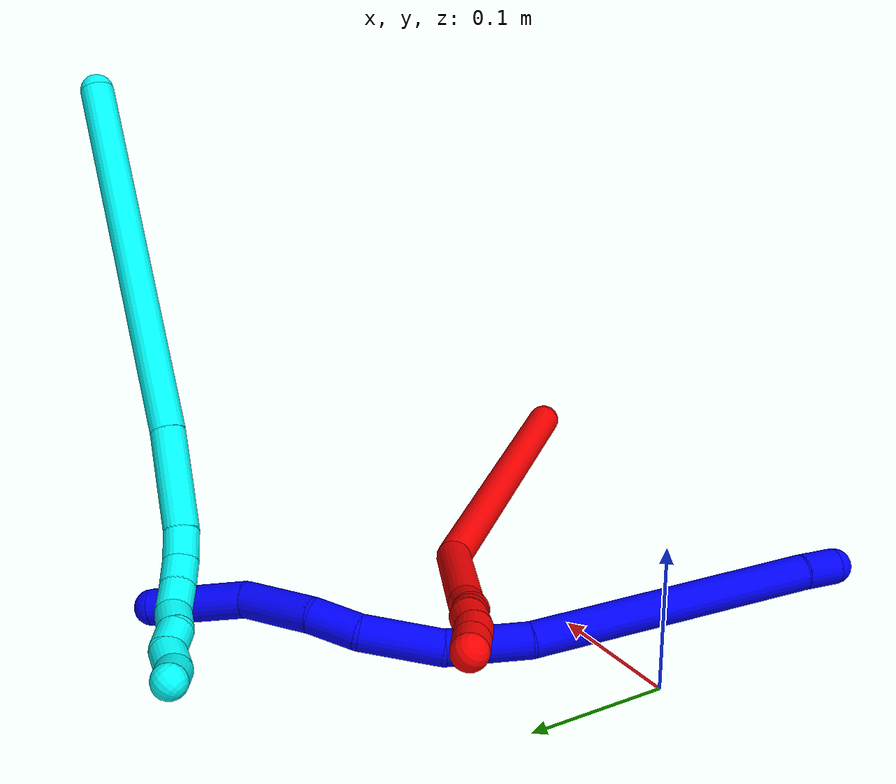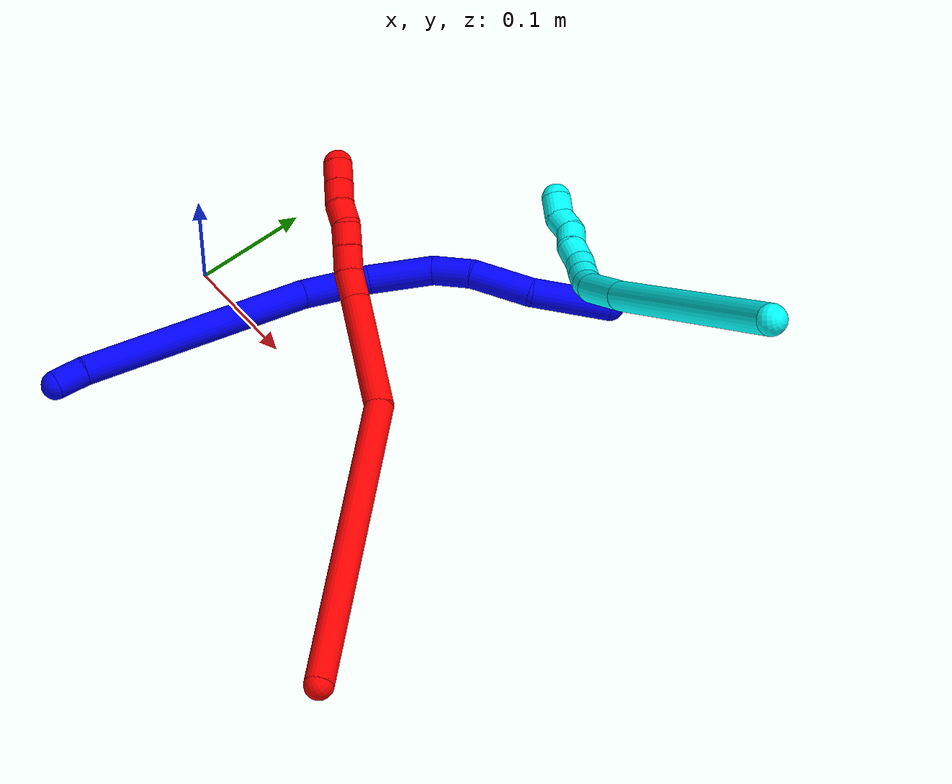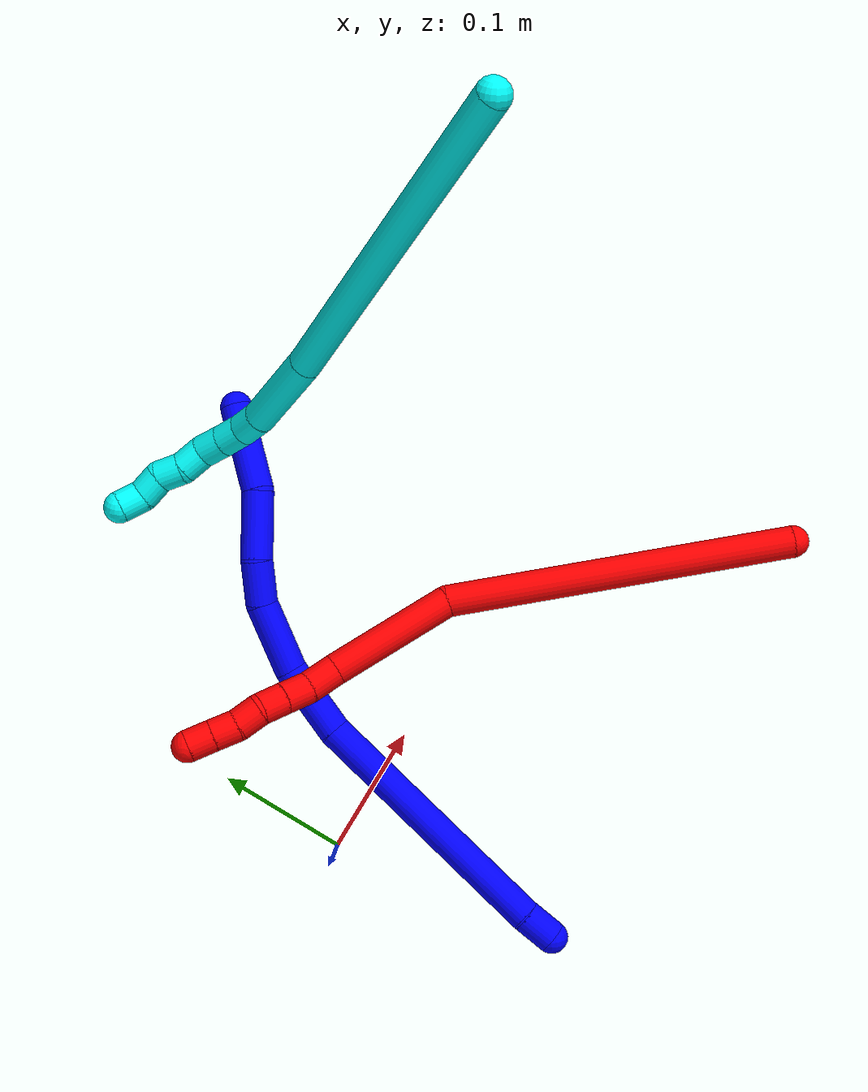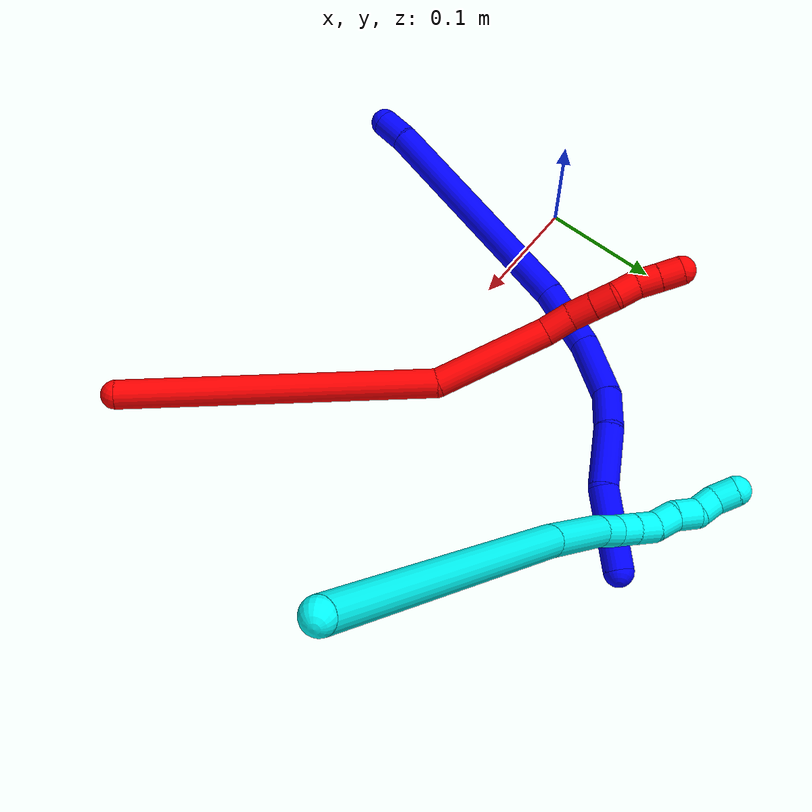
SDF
<sdf version="1.7">
 <world name="default">
  <plugin name="TubeGeneratorPlugin" filename="libtube_generator_plugin.so"/>
  <model name="photoneo_s_sensor">
   <static>1</static>
   <pose>0 0 2 1.57079 1.57079 3.14159</pose>
   <link name="link">
    <inertial><mass>0.1</mass></inertial>
    <sensor name="sensor" type="depth">
     <update_rate>30</update_rate>
     <camera>
      <horizontal_fov>1.22</horizontal_fov>
      <image><width>1920</width><height>1200</height><format>B8G8R8</format></image>
      <clip><near>0.1</near><far>4</far></clip>
      <depth_camera><output>points</output></depth_camera>
     </camera>
     <plugin name="camera_plugin" filename="libgazebo_ros_depth_camera.so">
      <baseline>0.2</baseline>
      <alwaysOn>1</alwaysOn>
      <updateRate>0.0</updateRate>
      <cameraName>camera_ir</cameraName>
      <imageTopicName>/camera/color/image_raw</imageTopicName>
      <cameraInfoTopicName>/camera/color/camera_info</cameraInfoTopicName>
      <depthImageTopicName>/camera/depth/image_raw</depthImageTopicName>
      <depthImageCameraInfoTopicName>/camera/depth/camera_info</depthImageCameraInfoTopicName>
      <pointCloudTopicName>/camera/depth/points</pointCloudTopicName>
      <frameName>fr_optical</frameName>
      <pointCloudCutoff>0.1</pointCloudCutoff>
      <pointCloudCutoffMax>2.0</pointCloudCutoffMax>
      <distortionK1>0</distortionK1>
      <distortionK2>0</distortionK2>
      <distortionK3>0</distortionK3>
      <distortionT1>0</distortionT1>
      <distortionT2>0</distortionT2>
      <CxPrime>0</CxPrime>
      <Cx>0</Cx>
      <Cy>0</Cy>
      <focalLength>0</focalLength>
      <hackBaseline>0</hackBaseline>
     </plugin>
    </sensor>
   </link>
  </model>
  <gravity>0 0 -9.8</gravity>
  <magnetic_field>6e-06 2.3e-05 -4.2e-05</magnetic_field>
  <atmosphere type="adiabatic"/>
  <physics name="default_physics" default="0" type="ode">
   <max_step_size>0.003</max_step_size>
   <real_time_factor>1</real_time_factor>
   <real_time_update_rate>1000</real_time_update_rate>
   <max_contacts>10000</max_contacts>
   <ode>
    <solver>
     <type>quick</type>
     <iters>100</iters>
     <sor>1.3</sor>
     <use_dynamic_moi_rescaling>0</use_dynamic_moi_rescaling>
    </solver>
    <constraints>
     <contact_max_correcting_vel>0</contact_max_correcting_vel>
     <contact_surface_layer>0.001</contact_surface_layer>
     <cfm>0</cfm>
     <erp>0.2</erp>
    </constraints>
   </ode>
  </physics>
  <scene><ambient>0.4 0.4 0.4 1</ambient><background>0.7 0.7 0.7 1</background><shadows>0</shadows></scene>
  <audio><device>default</device></audio>
  <spherical_coordinates>
   <surface_model>EARTH_WGS84</surface_model>
   <latitude_deg>0</latitude_deg>
   <longitude_deg>0</longitude_deg>
   <elevation>0</elevation>
   <heading_deg>0</heading_deg>
  </spherical_coordinates>
  <model name="bin">
   <static>1</static>
   <link name="bottom">
    <collision name="collision-bottom">
     <pose>0 0 -0.01 0 -0 0</pose>
     <geometry><box><size>0.8 0.6 0.02</size></box></geometry>
     <surface>
      <friction><ode><mu>100</mu><mu2>100</mu2></ode></friction>
      <contact><collide_bitmask>65535</collide_bitmask></contact>
     </surface>
    </collision>
   </link>
   <link name="west_wall">
    <collision name="collision-west_wall">
     <pose>-0.41 0 0.1 0 -0 0</pose>
     <geometry><box><size>0.02 0.6 0.2</size></box></geometry>
     <surface>
      <friction><ode><mu>100</mu><mu2>100</mu2></ode></friction>
      <contact><collide_bitmask>65535</collide_bitmask></contact>
     </surface>
    </collision>
   </link>
   <link name="east_wall">
    <collision name="collision-east_wall">
     <pose>0.41 0 0.1 0 -0 0</pose>
     <geometry><box><size>0.02 0.6 0.2</size></box></geometry>
     <surface>
      <friction><ode><mu>100</mu><mu2>100</mu2></ode></friction>
      <contact><collide_bitmask>65535</collide_bitmask></contact>
     </surface>
    </collision>
   </link>
   <link name="south_wall">
    <collision name="collision-south_wall">
     <pose>0 -0.31 0.1 0 -0 0</pose>
     <geometry><box><size>0.8 0.02 0.2</size></box></geometry>
     <surface>
      <friction><ode><mu>100</mu><mu2>100</mu2></ode></friction>
      <contact><collide_bitmask>65535</collide_bitmask></contact>
     </surface>
    </collision>
   </link>
   <link name="north_wall">
    <collision name="collision-north_wall">
     <pose>0 0.31 0.1 0 -0 0</pose>
     <geometry><box><size>0.8 0.02 0.2</size></box></geometry>
     <surface>
      <friction><ode><mu>100</mu><mu2>100</mu2></ode></friction>
      <contact><collide_bitmask>65535</collide_bitmask></contact>
     </surface>
    </collision>
   </link>
  </model>
  <model name="1">
   <static>0</static>
   <link name="1">
    <collision name="collision-cylinder-e_1_1_4">
     <pose>0.003738 0.008955 0.00874 -0.7976 0.290298 -0.123037</pose>
     <geometry><cylinder><radius>0.0125</radius><length>0.026119</length></cylinder></geometry>
     <surface>
      <friction><ode><mu>1.16</mu><mu2>1.16</mu2><slip1>0</slip1><slip2>0</slip2></ode></friction>
      <contact><ode><kp>1e+06</kp><kd>1</kd><max_vel>0</max_vel><min_depth>0.001</min_depth></ode></contact>
     </surface>
    </collision>
    <visual name="visual-cylinder-e_1_1_4">
     <pose>0.003738 0.008955 0.00874 -0.7976 0.290298 -0.123037</pose>
     <geometry><cylinder><radius>0.0125</radius><length>0.026119</length></cylinder></geometry>
     <material><ambient>0 0 1 1</ambient></material>
    </visual>
    <collision name="collision-cylinder-e_2_4_5">
     <pose>0.045831 0.079611 0.088482 -0.715412 0.387161 -0.146289</pose>
     <geometry><cylinder><radius>0.0125</radius><length>0.203169</length></cylinder></geometry>
     <surface>
      <friction><ode><mu>1.16</mu><mu2>1.16</mu2><slip1>0</slip1><slip2>0</slip2></ode></friction>
      <contact><ode><kp>1e+06</kp><kd>1</kd><max_vel>0</max_vel><min_depth>0.001</min_depth></ode></contact>
     </surface>
    </collision>
    <visual name="visual-cylinder-e_2_4_5">
     <pose>0.045831 0.079611 0.088482 -0.715412 0.387161 -0.146289</pose>
     <geometry><cylinder><radius>0.0125</radius><length>0.203169</length></cylinder></geometry>
     <material><ambient>0 0 1 1</ambient></material>
    </visual>
    <collision name="collision-cylinder-e_3_5_6">
     <pose>0.092996 0.155229 0.183477 -0.525649 0.307577 -0.083363</pose>
     <geometry><cylinder><radius>0.0125</radius><length>0.058203</length></cylinder></geometry>
     <surface>
      <friction><ode><mu>1.16</mu><mu2>1.16</mu2><slip1>0</slip1><slip2>0</slip2></ode></friction>
      <contact><ode><kp>1e+06</kp><kd>1</kd><max_vel>0</max_vel><min_depth>0.001</min_depth></ode></contact>
     </surface>
    </collision>
    <visual name="visual-cylinder-e_3_5_6">
     <pose>0.092996 0.155229 0.183477 -0.525649 0.307577 -0.083363</pose>
     <geometry><cylinder><radius>0.0125</radius><length>0.058203</length></cylinder></geometry>
     <material><ambient>0 0 1 1</ambient></material>
    </visual>
    <collision name="collision-cylinder-e_4_6_7">
     <pose>0.104673 0.178 0.234173 -0.320149 0.101564 -0.016412</pose>
     <geometry><cylinder><radius>0.0125</radius><length>0.056562</length></cylinder></geometry>
     <surface>
      <friction><ode><mu>1.16</mu><mu2>1.16</mu2><slip1>0</slip1><slip2>0</slip2></ode></friction>
      <contact><ode><kp>1e+06</kp><kd>1</kd><max_vel>0</max_vel><min_depth>0.001</min_depth></ode></contact>
     </surface>
    </collision>
    <visual name="visual-cylinder-e_4_6_7">
     <pose>0.104673 0.178 0.234173 -0.320149 0.101564 -0.016412</pose>
     <geometry><cylinder><radius>0.0125</radius><length>0.056562</length></cylinder></geometry>
     <material><ambient>0 0 1 1</ambient></material>
    </visual>
    <collision name="collision-cylinder-e_5_7_8">
     <pose>0.108107 0.187412 0.278042 -0.03248 0.03296 -0.000535</pose>
     <geometry><cylinder><radius>0.0125</radius><length>0.034363</length></cylinder></geometry>
     <surface>
      <friction><ode><mu>1.16</mu><mu2>1.16</mu2><slip1>0</slip1><slip2>0</slip2></ode></friction>
      <contact><ode><kp>1e+06</kp><kd>1</kd><max_vel>0</max_vel><min_depth>0.001</min_depth></ode></contact>
     </surface>
    </collision>
    <visual name="visual-cylinder-e_5_7_8">
     <pose>0.108107 0.187412 0.278042 -0.03248 0.03296 -0.000535</pose>
     <geometry><cylinder><radius>0.0125</radius><length>0.034363</length></cylinder></geometry>
     <material><ambient>0 0 1 1</ambient></material>
    </visual>
    <collision name="collision-cylinder-e_6_8_9">
     <pose>0.113797 0.184713 0.320857 0.126292 0.195622 0.012409</pose>
     <geometry><cylinder><radius>0.0125</radius><length>0.05272</length></cylinder></geometry>
     <surface>
      <friction><ode><mu>1.16</mu><mu2>1.16</mu2><slip1>0</slip1><slip2>0</slip2></ode></friction>
      <contact><ode><kp>1e+06</kp><kd>1</kd><max_vel>0</max_vel><min_depth>0.001</min_depth></ode></contact>
     </surface>
    </collision>
    <visual name="visual-cylinder-e_6_8_9">
     <pose>0.113797 0.184713 0.320857 0.126292 0.195622 0.012409</pose>
     <geometry><cylinder><radius>0.0125</radius><length>0.05272</length></cylinder></geometry>
     <material><ambient>0 0 1 1</ambient></material>
    </visual>
    <collision name="collision-cylinder-e_7_9_2">
     <pose>0.133198 0.185224 0.377613 -0.120549 0.427549 -0.0262</pose>
     <geometry><cylinder><radius>0.0125</radius><length>0.068863</length></cylinder></geometry>
     <surface>
      <friction><ode><mu>1.16</mu><mu2>1.16</mu2><slip1>0</slip1><slip2>0</slip2></ode></friction>
      <contact><ode><kp>1e+06</kp><kd>1</kd><max_vel>0</max_vel><min_depth>0.001</min_depth></ode></contact>
     </surface>
    </collision>
    <visual name="visual-cylinder-e_7_9_2">
     <pose>0.133198 0.185224 0.377613 -0.120549 0.427549 -0.0262</pose>
     <geometry><cylinder><radius>0.0125</radius><length>0.068863</length></cylinder></geometry>
     <material><ambient>0 0 1 1</ambient></material>
    </visual>
    <collision name="collision-sphere-2">
     <pose>0.147474 0.188992 0.408718 0 -0 0</pose>
     <geometry><sphere><radius>0.0125</radius></sphere></geometry>
     <surface>
      <friction><ode><mu>1.16</mu><mu2>1.16</mu2><slip1>0</slip1><slip2>0</slip2></ode></friction>
      <contact><ode><kp>1e+06</kp><kd>1</kd><max_vel>0</max_vel><min_depth>0.001</min_depth></ode></contact>
     </surface>
    </collision>
    <visual name="visual-sphere-2">
     <pose>0.147474 0.188992 0.408718 0 -0 0</pose>
     <geometry><sphere><radius>0.0125</radius></sphere></geometry>
     <material><ambient>0 0 1 1</ambient></material>
    </visual>
    <collision name="collision-sphere-9">
     <pose>0.118921 0.181456 0.346509 0 -0 0</pose>
     <geometry><sphere><radius>0.0125</radius></sphere></geometry>
     <surface>
      <friction><ode><mu>1.16</mu><mu2>1.16</mu2><slip1>0</slip1><slip2>0</slip2></ode></friction>
      <contact><ode><kp>1e+06</kp><kd>1</kd><max_vel>0</max_vel><min_depth>0.001</min_depth></ode></contact>
     </surface>
    </collision>
    <visual name="visual-sphere-9">
     <pose>0.118921 0.181456 0.346509 0 -0 0</pose>
     <geometry><sphere><radius>0.0125</radius></sphere></geometry>
     <material><ambient>0 0 1 1</ambient></material>
    </visual>
    <collision name="collision-sphere-4">
     <pose>0.007476 0.017911 0.017479 0 -0 0</pose>
     <geometry><sphere><radius>0.0125</radius></sphere></geometry>
     <surface>
      <friction><ode><mu>1.16</mu><mu2>1.16</mu2><slip1>0</slip1><slip2>0</slip2></ode></friction>
      <contact><ode><kp>1e+06</kp><kd>1</kd><max_vel>0</max_vel><min_depth>0.001</min_depth></ode></contact>
     </surface>
    </collision>
    <visual name="visual-sphere-4">
     <pose>0.007476 0.017911 0.017479 0 -0 0</pose>
     <geometry><sphere><radius>0.0125</radius></sphere></geometry>
     <material><ambient>0 0 1 1</ambient></material>
    </visual>
    <collision name="collision-sphere-1">
     <geometry><sphere><radius>0.0125</radius></sphere></geometry>
     <surface>
      <friction><ode><mu>1.16</mu><mu2>1.16</mu2><slip1>0</slip1><slip2>0</slip2></ode></friction>
      <contact><ode><kp>1e+06</kp><kd>1</kd><max_vel>0</max_vel><min_depth>0.001</min_depth></ode></contact>
     </surface>
    </collision>
    <visual name="visual-sphere-1">
     <geometry><sphere><radius>0.0125</radius></sphere></geometry>
     <material><ambient>0 0 1 1</ambient></material>
    </visual>
    <collision name="collision-sphere-8">
     <pose>0.108673 0.18797 0.295206 0 -0 0</pose>
     <geometry><sphere><radius>0.0125</radius></sphere></geometry>
     <surface>
      <friction><ode><mu>1.16</mu><mu2>1.16</mu2><slip1>0</slip1><slip2>0</slip2></ode></friction>
      <contact><ode><kp>1e+06</kp><kd>1</kd><max_vel>0</max_vel><min_depth>0.001</min_depth></ode></contact>
     </surface>
    </collision>
    <visual name="visual-sphere-8">
     <pose>0.108673 0.18797 0.295206 0 -0 0</pose>
     <geometry><sphere><radius>0.0125</radius></sphere></geometry>
     <material><ambient>0 0 1 1</ambient></material>
    </visual>
    <collision name="collision-sphere-5">
     <pose>0.084185 0.141312 0.159485 0 -0 0</pose>
     <geometry><sphere><radius>0.0125</radius></sphere></geometry>
     <surface>
      <friction><ode><mu>1.16</mu><mu2>1.16</mu2><slip1>0</slip1><slip2>0</slip2></ode></friction>
      <contact><ode><kp>1e+06</kp><kd>1</kd><max_vel>0</max_vel><min_depth>0.001</min_depth></ode></contact>
     </surface>
    </collision>
    <visual name="visual-sphere-5">
     <pose>0.084185 0.141312 0.159485 0 -0 0</pose>
     <geometry><sphere><radius>0.0125</radius></sphere></geometry>
     <material><ambient>0 0 1 1</ambient></material>
    </visual>
    <collision name="collision-sphere-6">
     <pose>0.101806 0.169146 0.207468 0 -0 0</pose>
     <geometry><sphere><radius>0.0125</radius></sphere></geometry>
     <surface>
      <friction><ode><mu>1.16</mu><mu2>1.16</mu2><slip1>0</slip1><slip2>0</slip2></ode></friction>
      <contact><ode><kp>1e+06</kp><kd>1</kd><max_vel>0</max_vel><min_depth>0.001</min_depth></ode></contact>
     </surface>
    </collision>
    <visual name="visual-sphere-6">
     <pose>0.101806 0.169146 0.207468 0 -0 0</pose>
     <geometry><sphere><radius>0.0125</radius></sphere></geometry>
     <material><ambient>0 0 1 1</ambient></material>
    </visual>
    <collision name="collision-sphere-7">
     <pose>0.107541 0.186855 0.260879 0 -0 0</pose>
     <geometry><sphere><radius>0.0125</radius></sphere></geometry>
     <surface>
      <friction><ode><mu>1.16</mu><mu2>1.16</mu2><slip1>0</slip1><slip2>0</slip2></ode></friction>
      <contact><ode><kp>1e+06</kp><kd>1</kd><max_vel>0</max_vel><min_depth>0.001</min_depth></ode></contact>
     </surface>
    </collision>
    <visual name="visual-sphere-7">
     <pose>0.107541 0.186855 0.260879 0 -0 0</pose>
     <geometry><sphere><radius>0.0125</radius></sphere></geometry>
     <material><ambient>0 0 1 1</ambient></material>
    </visual>
    <inertial>
     <pose>0.079258 0.128889 0.189206 0 -0 0</pose>
     <mass>0.5</mass>
     <inertia>
      <ixx>0.000644</ixx>
      <ixy>0</ixy>
      <ixz>0</ixz>
      <iyy>0.000553</iyy>
      <iyz>0</iyz>
      <izz>-0.000705</izz>
     </inertia>
    </inertial>
   </link>
   <pose>0.029179 -0.176018 0.027572 0.900006 1.25681 1.52531</pose>
  </model>
  <model name="2">
   <static>0</static>
   <link name="2">
    <collision name="collision-cylinder-e_1_1_4">
     <pose>-0.105054 0.078047 0.035652 -1.1423 -0.885913 0.59179</pose>
     <geometry><cylinder><radius>0.0125</radius><length>0.271283</length></cylinder></geometry>
     <surface>
      <friction><ode><mu>1.16</mu><mu2>1.16</mu2><slip1>0</slip1><slip2>0</slip2></ode></friction>
      <contact><ode><kp>1e+06</kp><kd>1</kd><max_vel>0</max_vel><min_depth>0.001</min_depth></ode></contact>
     </surface>
    </collision>
    <visual name="visual-cylinder-e_1_1_4">
     <pose>-0.105054 0.078047 0.035652 -1.1423 -0.885913 0.59179</pose>
     <geometry><cylinder><radius>0.0125</radius><length>0.271283</length></cylinder></geometry>
     <material><ambient>1 0 0 1</ambient></material>
    </visual>
    <collision name="collision-cylinder-e_2_4_5">
     <pose>-0.248444 0.172195 0.100434 -0.50492 -0.855834 0.234239</pose>
     <geometry><cylinder><radius>0.0125</radius><length>0.101537</length></cylinder></geometry>
     <surface>
      <friction><ode><mu>1.16</mu><mu2>1.16</mu2><slip1>0</slip1><slip2>0</slip2></ode></friction>
      <contact><ode><kp>1e+06</kp><kd>1</kd><max_vel>0</max_vel><min_depth>0.001</min_depth></ode></contact>
     </surface>
    </collision>
    <visual name="visual-cylinder-e_2_4_5">
     <pose>-0.248444 0.172195 0.100434 -0.50492 -0.855834 0.234239</pose>
     <geometry><cylinder><radius>0.0125</radius><length>0.101537</length></cylinder></geometry>
     <material><ambient>1 0 0 1</ambient></material>
    </visual>
    <collision name="collision-cylinder-e_3_5_6">
     <pose>-0.294834 0.192373 0.138226 -0.439993 -0.69943 0.162747</pose>
     <geometry><cylinder><radius>0.0125</radius><length>0.025022</length></cylinder></geometry>
     <surface>
      <friction><ode><mu>1.16</mu><mu2>1.16</mu2><slip1>0</slip1><slip2>0</slip2></ode></friction>
      <contact><ode><kp>1e+06</kp><kd>1</kd><max_vel>0</max_vel><min_depth>0.001</min_depth></ode></contact>
     </surface>
    </collision>
    <visual name="visual-cylinder-e_3_5_6">
     <pose>-0.294834 0.192373 0.138226 -0.439993 -0.69943 0.162747</pose>
     <geometry><cylinder><radius>0.0125</radius><length>0.025022</length></cylinder></geometry>
     <material><ambient>1 0 0 1</ambient></material>
    </visual>
    <collision name="collision-cylinder-e_4_6_7">
     <pose>-0.308836 0.201862 0.154138 -0.641225 -0.581533 0.198092</pose>
     <geometry><cylinder><radius>0.0125</radius><length>0.021653</length></cylinder></geometry>
     <surface>
      <friction><ode><mu>1.16</mu><mu2>1.16</mu2><slip1>0</slip1><slip2>0</slip2></ode></friction>
      <contact><ode><kp>1e+06</kp><kd>1</kd><max_vel>0</max_vel><min_depth>0.001</min_depth></ode></contact>
     </surface>
    </collision>
    <visual name="visual-cylinder-e_4_6_7">
     <pose>-0.308836 0.201862 0.154138 -0.641225 -0.581533 0.198092</pose>
     <geometry><cylinder><radius>0.0125</radius><length>0.021653</length></cylinder></geometry>
     <material><ambient>1 0 0 1</ambient></material>
    </visual>
    <collision name="collision-cylinder-e_5_7_8">
     <pose>-0.320474 0.212142 0.168058 -0.630449 -0.603459 0.202291</pose>
     <geometry><cylinder><radius>0.0125</radius><length>0.020059</length></cylinder></geometry>
     <surface>
      <friction><ode><mu>1.16</mu><mu2>1.16</mu2><slip1>0</slip1><slip2>0</slip2></ode></friction>
      <contact><ode><kp>1e+06</kp><kd>1</kd><max_vel>0</max_vel><min_depth>0.001</min_depth></ode></contact>
     </surface>
    </collision>
    <visual name="visual-cylinder-e_5_7_8">
     <pose>-0.320474 0.212142 0.168058 -0.630449 -0.603459 0.202291</pose>
     <geometry><cylinder><radius>0.0125</radius><length>0.020059</length></cylinder></geometry>
     <material><ambient>1 0 0 1</ambient></material>
    </visual>
    <collision name="collision-cylinder-e_6_8_9">
     <pose>-0.334093 0.21948 0.18062 -0.396963 -0.892509 0.191868</pose>
     <geometry><cylinder><radius>0.0125</radius><length>0.020361</length></cylinder></geometry>
     <surface>
      <friction><ode><mu>1.16</mu><mu2>1.16</mu2><slip1>0</slip1><slip2>0</slip2></ode></friction>
      <contact><ode><kp>1e+06</kp><kd>1</kd><max_vel>0</max_vel><min_depth>0.001</min_depth></ode></contact>
     </surface>
    </collision>
    <visual name="visual-cylinder-e_6_8_9">
     <pose>-0.334093 0.21948 0.18062 -0.396963 -0.892509 0.191868</pose>
     <geometry><cylinder><radius>0.0125</radius><length>0.020361</length></cylinder></geometry>
     <material><ambient>1 0 0 1</ambient></material>
    </visual>
    <collision name="collision-cylinder-e_7_9_10">
     <pose>-0.349462 0.226491 0.191437 -0.744821 -0.837782 0.344413</pose>
     <geometry><cylinder><radius>0.0125</radius><length>0.020027</length></cylinder></geometry>
     <surface>
      <friction><ode><mu>1.16</mu><mu2>1.16</mu2><slip1>0</slip1><slip2>0</slip2></ode></friction>
      <contact><ode><kp>1e+06</kp><kd>1</kd><max_vel>0</max_vel><min_depth>0.001</min_depth></ode></contact>
     </surface>
    </collision>
    <visual name="visual-cylinder-e_7_9_10">
     <pose>-0.349462 0.226491 0.191437 -0.744821 -0.837782 0.344413</pose>
     <geometry><cylinder><radius>0.0125</radius><length>0.020027</length></cylinder></geometry>
     <material><ambient>1 0 0 1</ambient></material>
    </visual>
    <collision name="collision-cylinder-e_8_10_2">
     <pose>-0.364318 0.235507 0.20142 -0.724337 -0.832125 0.331746</pose>
     <geometry><cylinder><radius>0.0125</radius><length>0.020057</length></cylinder></geometry>
     <surface>
      <friction><ode><mu>1.16</mu><mu2>1.16</mu2><slip1>0</slip1><slip2>0</slip2></ode></friction>
      <contact><ode><kp>1e+06</kp><kd>1</kd><max_vel>0</max_vel><min_depth>0.001</min_depth></ode></contact>
     </surface>
    </collision>
    <visual name="visual-cylinder-e_8_10_2">
     <pose>-0.364318 0.235507 0.20142 -0.724337 -0.832125 0.331746</pose>
     <geometry><cylinder><radius>0.0125</radius><length>0.020057</length></cylinder></geometry>
     <material><ambient>1 0 0 1</ambient></material>
    </visual>
    <collision name="collision-sphere-2">
     <pose>-0.371733 0.239981 0.206477 0 -0 0</pose>
     <geometry><sphere><radius>0.0125</radius></sphere></geometry>
     <surface>
      <friction><ode><mu>1.16</mu><mu2>1.16</mu2><slip1>0</slip1><slip2>0</slip2></ode></friction>
      <contact><ode><kp>1e+06</kp><kd>1</kd><max_vel>0</max_vel><min_depth>0.001</min_depth></ode></contact>
     </surface>
    </collision>
    <visual name="visual-sphere-2">
     <pose>-0.371733 0.239981 0.206477 0 -0 0</pose>
     <geometry><sphere><radius>0.0125</radius></sphere></geometry>
     <material><ambient>1 0 0 1</ambient></material>
    </visual>
    <collision name="collision-sphere-10">
     <pose>-0.356903 0.231033 0.196363 0 -0 0</pose>
     <geometry><sphere><radius>0.0125</radius></sphere></geometry>
     <surface>
      <friction><ode><mu>1.16</mu><mu2>1.16</mu2><slip1>0</slip1><slip2>0</slip2></ode></friction>
      <contact><ode><kp>1e+06</kp><kd>1</kd><max_vel>0</max_vel><min_depth>0.001</min_depth></ode></contact>
     </surface>
    </collision>
    <visual name="visual-sphere-10">
     <pose>-0.356903 0.231033 0.196363 0 -0 0</pose>
     <geometry><sphere><radius>0.0125</radius></sphere></geometry>
     <material><ambient>1 0 0 1</ambient></material>
    </visual>
    <collision name="collision-sphere-9">
     <pose>-0.34202 0.221949 0.186511 0 -0 0</pose>
     <geometry><sphere><radius>0.0125</radius></sphere></geometry>
     <surface>
      <friction><ode><mu>1.16</mu><mu2>1.16</mu2><slip1>0</slip1><slip2>0</slip2></ode></friction>
      <contact><ode><kp>1e+06</kp><kd>1</kd><max_vel>0</max_vel><min_depth>0.001</min_depth></ode></contact>
     </surface>
    </collision>
    <visual name="visual-sphere-9">
     <pose>-0.34202 0.221949 0.186511 0 -0 0</pose>
     <geometry><sphere><radius>0.0125</radius></sphere></geometry>
     <material><ambient>1 0 0 1</ambient></material>
    </visual>
    <collision name="collision-sphere-4">
     <pose>-0.210107 0.156094 0.071304 0 -0 0</pose>
     <geometry><sphere><radius>0.0125</radius></sphere></geometry>
     <surface>
      <friction><ode><mu>1.16</mu><mu2>1.16</mu2><slip1>0</slip1><slip2>0</slip2></ode></friction>
      <contact><ode><kp>1e+06</kp><kd>1</kd><max_vel>0</max_vel><min_depth>0.001</min_depth></ode></contact>
     </surface>
    </collision>
    <visual name="visual-sphere-4">
     <pose>-0.210107 0.156094 0.071304 0 -0 0</pose>
     <geometry><sphere><radius>0.0125</radius></sphere></geometry>
     <material><ambient>1 0 0 1</ambient></material>
    </visual>
    <collision name="collision-sphere-1">
     <geometry><sphere><radius>0.0125</radius></sphere></geometry>
     <surface>
      <friction><ode><mu>1.16</mu><mu2>1.16</mu2><slip1>0</slip1><slip2>0</slip2></ode></friction>
      <contact><ode><kp>1e+06</kp><kd>1</kd><max_vel>0</max_vel><min_depth>0.001</min_depth></ode></contact>
     </surface>
    </collision>
    <visual name="visual-sphere-1">
     <geometry><sphere><radius>0.0125</radius></sphere></geometry>
     <material><ambient>1 0 0 1</ambient></material>
    </visual>
    <collision name="collision-sphere-8">
     <pose>-0.326166 0.21701 0.174729 0 -0 0</pose>
     <geometry><sphere><radius>0.0125</radius></sphere></geometry>
     <surface>
      <friction><ode><mu>1.16</mu><mu2>1.16</mu2><slip1>0</slip1><slip2>0</slip2></ode></friction>
      <contact><ode><kp>1e+06</kp><kd>1</kd><max_vel>0</max_vel><min_depth>0.001</min_depth></ode></contact>
     </surface>
    </collision>
    <visual name="visual-sphere-8">
     <pose>-0.326166 0.21701 0.174729 0 -0 0</pose>
     <geometry><sphere><radius>0.0125</radius></sphere></geometry>
     <material><ambient>1 0 0 1</ambient></material>
    </visual>
    <collision name="collision-sphere-5">
     <pose>-0.28678 0.188295 0.129564 0 -0 0</pose>
     <geometry><sphere><radius>0.0125</radius></sphere></geometry>
     <surface>
      <friction><ode><mu>1.16</mu><mu2>1.16</mu2><slip1>0</slip1><slip2>0</slip2></ode></friction>
      <contact><ode><kp>1e+06</kp><kd>1</kd><max_vel>0</max_vel><min_depth>0.001</min_depth></ode></contact>
     </surface>
    </collision>
    <visual name="visual-sphere-5">
     <pose>-0.28678 0.188295 0.129564 0 -0 0</pose>
     <geometry><sphere><radius>0.0125</radius></sphere></geometry>
     <material><ambient>1 0 0 1</ambient></material>
    </visual>
    <collision name="collision-sphere-6">
     <pose>-0.302888 0.19645 0.146888 0 -0 0</pose>
     <geometry><sphere><radius>0.0125</radius></sphere></geometry>
     <surface>
      <friction><ode><mu>1.16</mu><mu2>1.16</mu2><slip1>0</slip1><slip2>0</slip2></ode></friction>
      <contact><ode><kp>1e+06</kp><kd>1</kd><max_vel>0</max_vel><min_depth>0.001</min_depth></ode></contact>
     </surface>
    </collision>
    <visual name="visual-sphere-6">
     <pose>-0.302888 0.19645 0.146888 0 -0 0</pose>
     <geometry><sphere><radius>0.0125</radius></sphere></geometry>
     <material><ambient>1 0 0 1</ambient></material>
    </visual>
    <collision name="collision-sphere-7">
     <pose>-0.314783 0.207274 0.161388 0 -0 0</pose>
     <geometry><sphere><radius>0.0125</radius></sphere></geometry>
     <surface>
      <friction><ode><mu>1.16</mu><mu2>1.16</mu2><slip1>0</slip1><slip2>0</slip2></ode></friction>
      <contact><ode><kp>1e+06</kp><kd>1</kd><max_vel>0</max_vel><min_depth>0.001</min_depth></ode></contact>
     </surface>
    </collision>
    <visual name="visual-sphere-7">
     <pose>-0.314783 0.207274 0.161388 0 -0 0</pose>
     <geometry><sphere><radius>0.0125</radius></sphere></geometry>
     <material><ambient>1 0 0 1</ambient></material>
    </visual>
    <inertial>
     <pose>-0.190654 0.13165 0.083177 0 -0 0</pose>
     <mass>0.5</mass>
     <inertia>
      <ixx>0.001522</ixx>
      <ixy>0</ixy>
      <ixz>0</ixz>
      <iyy>0.001955</iyy>
      <iyz>0</iyz>
      <izz>0.000392</izz>
     </inertia>
    </inertial>
   </link>
   <pose>0.384958 -0.17951 0.0125 0.422521 -0.554835 -0.426084</pose>
  </model>
  <model name="3">
   <static>0</static>
   <link name="3">
    <collision name="collision-cylinder-e_1_1_4">
     <pose>-0.071321 0.01683 -0.120744 -3.0031 -0.529332 2.64052</pose>
     <geometry><cylinder><radius>0.0125</radius><length>0.282483</length></cylinder></geometry>
     <surface>
      <friction><ode><mu>1.16</mu><mu2>1.16</mu2><slip1>0</slip1><slip2>0</slip2></ode></friction>
      <contact><ode><kp>1e+06</kp><kd>1</kd><max_vel>0</max_vel><min_depth>0.001</min_depth></ode></contact>
     </surface>
    </collision>
    <visual name="visual-cylinder-e_1_1_4">
     <pose>-0.071321 0.01683 -0.120744 -3.0031 -0.529332 2.64052</pose>
     <geometry><cylinder><radius>0.0125</radius><length>0.282483</length></cylinder></geometry>
     <material><ambient>0.003922 1 0.996078 1</ambient></material>
    </visual>
    <collision name="collision-cylinder-e_2_4_5">
     <pose>-0.163327 0.037773 -0.271834 -3.00691 -0.59409 2.70787</pose>
     <geometry><cylinder><radius>0.0125</radius><length>0.073908</length></cylinder></geometry>
     <surface>
      <friction><ode><mu>1.16</mu><mu2>1.16</mu2><slip1>0</slip1><slip2>0</slip2></ode></friction>
      <contact><ode><kp>1e+06</kp><kd>1</kd><max_vel>0</max_vel><min_depth>0.001</min_depth></ode></contact>
     </surface>
    </collision>
    <visual name="visual-cylinder-e_2_4_5">
     <pose>-0.163327 0.037773 -0.271834 -3.00691 -0.59409 2.70787</pose>
     <geometry><cylinder><radius>0.0125</radius><length>0.073908</length></cylinder></geometry>
     <material><ambient>0.003922 1 0.996078 1</ambient></material>
    </visual>
    <collision name="collision-cylinder-e_3_5_6">
     <pose>-0.191613 0.042664 -0.310299 -3.04581 -0.750102 2.89931</pose>
     <geometry><cylinder><radius>0.0125</radius><length>0.022301</length></cylinder></geometry>
     <surface>
      <friction><ode><mu>1.16</mu><mu2>1.16</mu2><slip1>0</slip1><slip2>0</slip2></ode></friction>
      <contact><ode><kp>1e+06</kp><kd>1</kd><max_vel>0</max_vel><min_depth>0.001</min_depth></ode></contact>
     </surface>
    </collision>
    <visual name="visual-cylinder-e_3_5_6">
     <pose>-0.191613 0.042664 -0.310299 -3.04581 -0.750102 2.89931</pose>
     <geometry><cylinder><radius>0.0125</radius><length>0.022301</length></cylinder></geometry>
     <material><ambient>0.003922 1 0.996078 1</ambient></material>
    </visual>
    <collision name="collision-cylinder-e_4_6_7">
     <pose>-0.206665 0.042034 -0.32504 2.93175 -0.833233 -2.67433</pose>
     <geometry><cylinder><radius>0.0125</radius><length>0.020133</length></cylinder></geometry>
     <surface>
      <friction><ode><mu>1.16</mu><mu2>1.16</mu2><slip1>0</slip1><slip2>0</slip2></ode></friction>
      <contact><ode><kp>1e+06</kp><kd>1</kd><max_vel>0</max_vel><min_depth>0.001</min_depth></ode></contact>
     </surface>
    </collision>
    <visual name="visual-cylinder-e_4_6_7">
     <pose>-0.206665 0.042034 -0.32504 2.93175 -0.833233 -2.67433</pose>
     <geometry><cylinder><radius>0.0125</radius><length>0.020133</length></cylinder></geometry>
     <material><ambient>0.003922 1 0.996078 1</ambient></material>
    </visual>
    <collision name="collision-cylinder-e_5_7_8">
     <pose>-0.222107 0.038545 -0.33813 2.83061 -0.866158 -2.48783</pose>
     <geometry><cylinder><radius>0.0125</radius><length>0.02098</length></cylinder></geometry>
     <surface>
      <friction><ode><mu>1.16</mu><mu2>1.16</mu2><slip1>0</slip1><slip2>0</slip2></ode></friction>
      <contact><ode><kp>1e+06</kp><kd>1</kd><max_vel>0</max_vel><min_depth>0.001</min_depth></ode></contact>
     </surface>
    </collision>
    <visual name="visual-cylinder-e_5_7_8">
     <pose>-0.222107 0.038545 -0.33813 2.83061 -0.866158 -2.48783</pose>
     <geometry><cylinder><radius>0.0125</radius><length>0.02098</length></cylinder></geometry>
     <material><ambient>0.003922 1 0.996078 1</ambient></material>
    </visual>
    <collision name="collision-cylinder-e_6_8_9">
     <pose>-0.235443 0.030995 -0.35119 2.44876 -0.55787 -1.34143</pose>
     <geometry><cylinder><radius>0.0125</radius><length>0.020194</length></cylinder></geometry>
     <surface>
      <friction><ode><mu>1.16</mu><mu2>1.16</mu2><slip1>0</slip1><slip2>0</slip2></ode></friction>
      <contact><ode><kp>1e+06</kp><kd>1</kd><max_vel>0</max_vel><min_depth>0.001</min_depth></ode></contact>
     </surface>
    </collision>
    <visual name="visual-cylinder-e_6_8_9">
     <pose>-0.235443 0.030995 -0.35119 2.44876 -0.55787 -1.34143</pose>
     <geometry><cylinder><radius>0.0125</radius><length>0.020194</length></cylinder></geometry>
     <material><ambient>0.003922 1 0.996078 1</ambient></material>
    </visual>
    <collision name="collision-cylinder-e_7_9_10">
     <pose>-0.248709 0.02148 -0.362358 2.41793 -0.913958 -1.82952</pose>
     <geometry><cylinder><radius>0.0125</radius><length>0.020002</length></cylinder></geometry>
     <surface>
      <friction><ode><mu>1.16</mu><mu2>1.16</mu2><slip1>0</slip1><slip2>0</slip2></ode></friction>
      <contact><ode><kp>1e+06</kp><kd>1</kd><max_vel>0</max_vel><min_depth>0.001</min_depth></ode></contact>
     </surface>
    </collision>
    <visual name="visual-cylinder-e_7_9_10">
     <pose>-0.248709 0.02148 -0.362358 2.41793 -0.913958 -1.82952</pose>
     <geometry><cylinder><radius>0.0125</radius><length>0.020002</length></cylinder></geometry>
     <material><ambient>0.003922 1 0.996078 1</ambient></material>
    </visual>
    <collision name="collision-cylinder-e_8_10_11">
     <pose>-0.260962 0.012581 -0.374527 2.57267 -0.448119 -1.32408</pose>
     <geometry><cylinder><radius>0.0125</radius><length>0.02</length></cylinder></geometry>
     <surface>
      <friction><ode><mu>1.16</mu><mu2>1.16</mu2><slip1>0</slip1><slip2>0</slip2></ode></friction>
      <contact><ode><kp>1e+06</kp><kd>1</kd><max_vel>0</max_vel><min_depth>0.001</min_depth></ode></contact>
     </surface>
    </collision>
    <visual name="visual-cylinder-e_8_10_11">
     <pose>-0.260962 0.012581 -0.374527 2.57267 -0.448119 -1.32408</pose>
     <geometry><cylinder><radius>0.0125</radius><length>0.02</length></cylinder></geometry>
     <material><ambient>0.003922 1 0.996078 1</ambient></material>
    </visual>
    <collision name="collision-cylinder-e_9_11_2">
     <pose>-0.270971 0.000266 -0.385603 2.00756 -0.603708 -0.909591</pose>
     <geometry><cylinder><radius>0.0125</radius><length>0.02</length></cylinder></geometry>
     <surface>
      <friction><ode><mu>1.16</mu><mu2>1.16</mu2><slip1>0</slip1><slip2>0</slip2></ode></friction>
      <contact><ode><kp>1e+06</kp><kd>1</kd><max_vel>0</max_vel><min_depth>0.001</min_depth></ode></contact>
     </surface>
    </collision>
    <visual name="visual-cylinder-e_9_11_2">
     <pose>-0.270971 0.000266 -0.385603 2.00756 -0.603708 -0.909591</pose>
     <geometry><cylinder><radius>0.0125</radius><length>0.02</length></cylinder></geometry>
     <material><ambient>0.003922 1 0.996078 1</ambient></material>
    </visual>
    <collision name="collision-sphere-2">
     <pose>-0.276648 -0.007194 -0.389085 0 -0 0</pose>
     <geometry><sphere><radius>0.0125</radius></sphere></geometry>
     <surface>
      <friction><ode><mu>1.16</mu><mu2>1.16</mu2><slip1>0</slip1><slip2>0</slip2></ode></friction>
      <contact><ode><kp>1e+06</kp><kd>1</kd><max_vel>0</max_vel><min_depth>0.001</min_depth></ode></contact>
     </surface>
    </collision>
    <visual name="visual-sphere-2">
     <pose>-0.276648 -0.007194 -0.389085 0 -0 0</pose>
     <geometry><sphere><radius>0.0125</radius></sphere></geometry>
     <material><ambient>0.003922 1 0.996078 1</ambient></material>
    </visual>
    <collision name="collision-sphere-11">
     <pose>-0.265294 0.007725 -0.38212 0 -0 0</pose>
     <geometry><sphere><radius>0.0125</radius></sphere></geometry>
     <surface>
      <friction><ode><mu>1.16</mu><mu2>1.16</mu2><slip1>0</slip1><slip2>0</slip2></ode></friction>
      <contact><ode><kp>1e+06</kp><kd>1</kd><max_vel>0</max_vel><min_depth>0.001</min_depth></ode></contact>
     </surface>
    </collision>
    <visual name="visual-sphere-11">
     <pose>-0.265294 0.007725 -0.38212 0 -0 0</pose>
     <geometry><sphere><radius>0.0125</radius></sphere></geometry>
     <material><ambient>0.003922 1 0.996078 1</ambient></material>
    </visual>
    <collision name="collision-sphere-10">
     <pose>-0.256629 0.017436 -0.366934 0 -0 0</pose>
     <geometry><sphere><radius>0.0125</radius></sphere></geometry>
     <surface>
      <friction><ode><mu>1.16</mu><mu2>1.16</mu2><slip1>0</slip1><slip2>0</slip2></ode></friction>
      <contact><ode><kp>1e+06</kp><kd>1</kd><max_vel>0</max_vel><min_depth>0.001</min_depth></ode></contact>
     </surface>
    </collision>
    <visual name="visual-sphere-10">
     <pose>-0.256629 0.017436 -0.366934 0 -0 0</pose>
     <geometry><sphere><radius>0.0125</radius></sphere></geometry>
     <material><ambient>0.003922 1 0.996078 1</ambient></material>
    </visual>
    <collision name="collision-sphere-9">
     <pose>-0.240788 0.025523 -0.357781 0 -0 0</pose>
     <geometry><sphere><radius>0.0125</radius></sphere></geometry>
     <surface>
      <friction><ode><mu>1.16</mu><mu2>1.16</mu2><slip1>0</slip1><slip2>0</slip2></ode></friction>
      <contact><ode><kp>1e+06</kp><kd>1</kd><max_vel>0</max_vel><min_depth>0.001</min_depth></ode></contact>
     </surface>
    </collision>
    <visual name="visual-sphere-9">
     <pose>-0.240788 0.025523 -0.357781 0 -0 0</pose>
     <geometry><sphere><radius>0.0125</radius></sphere></geometry>
     <material><ambient>0.003922 1 0.996078 1</ambient></material>
    </visual>
    <collision name="collision-sphere-4">
     <pose>-0.142642 0.033661 -0.241489 0 -0 0</pose>
     <geometry><sphere><radius>0.0125</radius></sphere></geometry>
     <surface>
      <friction><ode><mu>1.16</mu><mu2>1.16</mu2><slip1>0</slip1><slip2>0</slip2></ode></friction>
      <contact><ode><kp>1e+06</kp><kd>1</kd><max_vel>0</max_vel><min_depth>0.001</min_depth></ode></contact>
     </surface>
    </collision>
    <visual name="visual-sphere-4">
     <pose>-0.142642 0.033661 -0.241489 0 -0 0</pose>
     <geometry><sphere><radius>0.0125</radius></sphere></geometry>
     <material><ambient>0.003922 1 0.996078 1</ambient></material>
    </visual>
    <collision name="collision-sphere-1">
     <geometry><sphere><radius>0.0125</radius></sphere></geometry>
     <surface>
      <friction><ode><mu>1.16</mu><mu2>1.16</mu2><slip1>0</slip1><slip2>0</slip2></ode></friction>
      <contact><ode><kp>1e+06</kp><kd>1</kd><max_vel>0</max_vel><min_depth>0.001</min_depth></ode></contact>
     </surface>
    </collision>
    <visual name="visual-sphere-1">
     <geometry><sphere><radius>0.0125</radius></sphere></geometry>
     <material><ambient>0.003922 1 0.996078 1</ambient></material>
    </visual>
    <collision name="collision-sphere-8">
     <pose>-0.230098 0.036466 -0.344599 0 -0 0</pose>
     <geometry><sphere><radius>0.0125</radius></sphere></geometry>
     <surface>
      <friction><ode><mu>1.16</mu><mu2>1.16</mu2><slip1>0</slip1><slip2>0</slip2></ode></friction>
      <contact><ode><kp>1e+06</kp><kd>1</kd><max_vel>0</max_vel><min_depth>0.001</min_depth></ode></contact>
     </surface>
    </collision>
    <visual name="visual-sphere-8">
     <pose>-0.230098 0.036466 -0.344599 0 -0 0</pose>
     <geometry><sphere><radius>0.0125</radius></sphere></geometry>
     <material><ambient>0.003922 1 0.996078 1</ambient></material>
    </visual>
    <collision name="collision-sphere-5">
     <pose>-0.184012 0.041884 -0.302178 0 -0 0</pose>
     <geometry><sphere><radius>0.0125</radius></sphere></geometry>
     <surface>
      <friction><ode><mu>1.16</mu><mu2>1.16</mu2><slip1>0</slip1><slip2>0</slip2></ode></friction>
      <contact><ode><kp>1e+06</kp><kd>1</kd><max_vel>0</max_vel><min_depth>0.001</min_depth></ode></contact>
     </surface>
    </collision>
    <visual name="visual-sphere-5">
     <pose>-0.184012 0.041884 -0.302178 0 -0 0</pose>
     <geometry><sphere><radius>0.0125</radius></sphere></geometry>
     <material><ambient>0.003922 1 0.996078 1</ambient></material>
    </visual>
    <collision name="collision-sphere-6">
     <pose>-0.199214 0.043445 -0.318419 0 -0 0</pose>
     <geometry><sphere><radius>0.0125</radius></sphere></geometry>
     <surface>
      <friction><ode><mu>1.16</mu><mu2>1.16</mu2><slip1>0</slip1><slip2>0</slip2></ode></friction>
      <contact><ode><kp>1e+06</kp><kd>1</kd><max_vel>0</max_vel><min_depth>0.001</min_depth></ode></contact>
     </surface>
    </collision>
    <visual name="visual-sphere-6">
     <pose>-0.199214 0.043445 -0.318419 0 -0 0</pose>
     <geometry><sphere><radius>0.0125</radius></sphere></geometry>
     <material><ambient>0.003922 1 0.996078 1</ambient></material>
    </visual>
    <collision name="collision-sphere-7">
     <pose>-0.214115 0.040624 -0.331661 0 -0 0</pose>
     <geometry><sphere><radius>0.0125</radius></sphere></geometry>
     <surface>
      <friction><ode><mu>1.16</mu><mu2>1.16</mu2><slip1>0</slip1><slip2>0</slip2></ode></friction>
      <contact><ode><kp>1e+06</kp><kd>1</kd><max_vel>0</max_vel><min_depth>0.001</min_depth></ode></contact>
     </surface>
    </collision>
    <visual name="visual-sphere-7">
     <pose>-0.214115 0.040624 -0.331661 0 -0 0</pose>
     <geometry><sphere><radius>0.0125</radius></sphere></geometry>
     <material><ambient>0.003922 1 0.996078 1</ambient></material>
    </visual>
    <inertial>
     <pose>-0.131359 0.02293 -0.208598 0 -0 0</pose>
     <mass>0.5</mass>
     <inertia>
      <ixx>-0.00069</ixx>
      <ixy>0</ixy>
      <ixz>0</ixz>
      <iyy>0.002535</iyy>
      <iyz>0</iyz>
      <izz>0.000725</izz>
     </inertia>
    </inertial>
   </link>
   <pose>0.495806 0.164747 0.318138 -0.970632 -0.355 -1.36106</pose>
  </model>
 </world>
</sdf>
